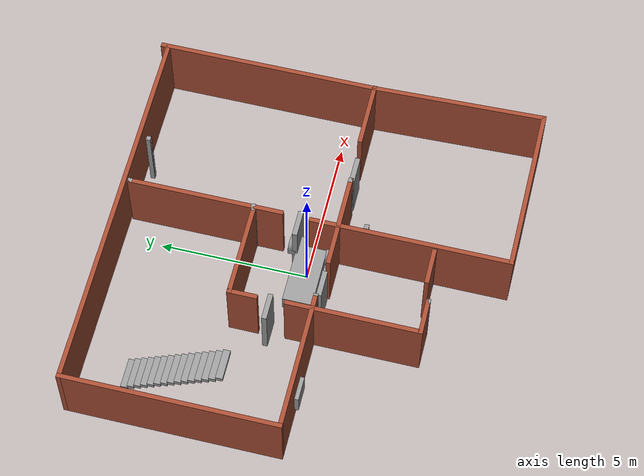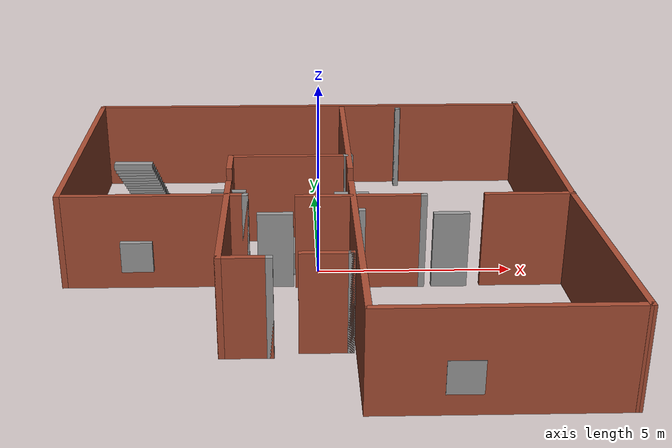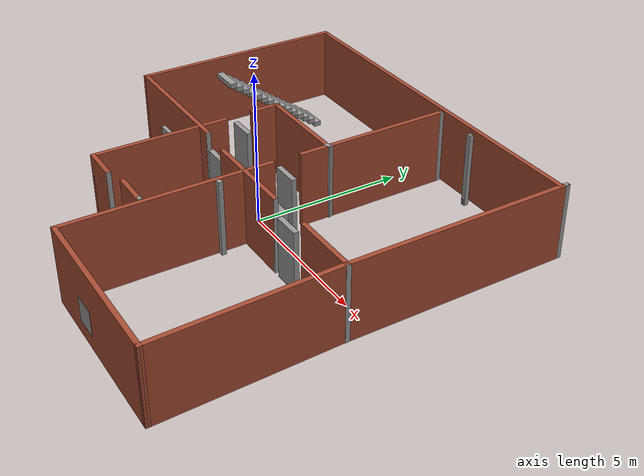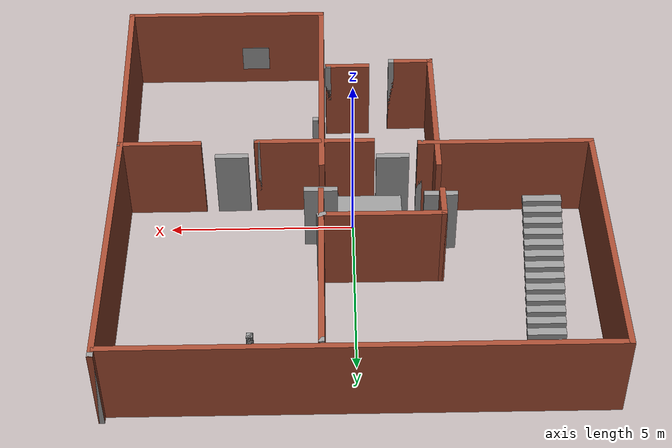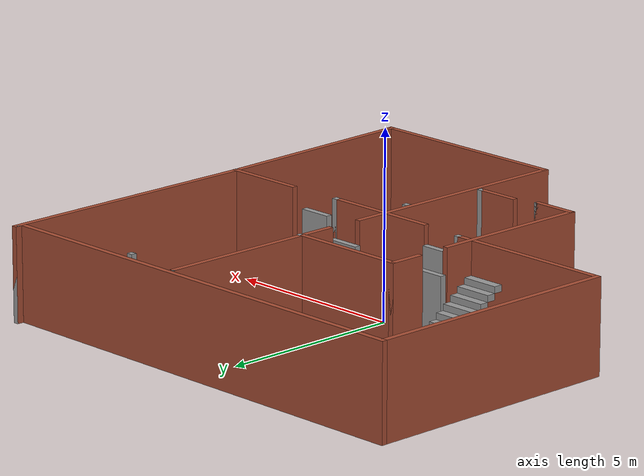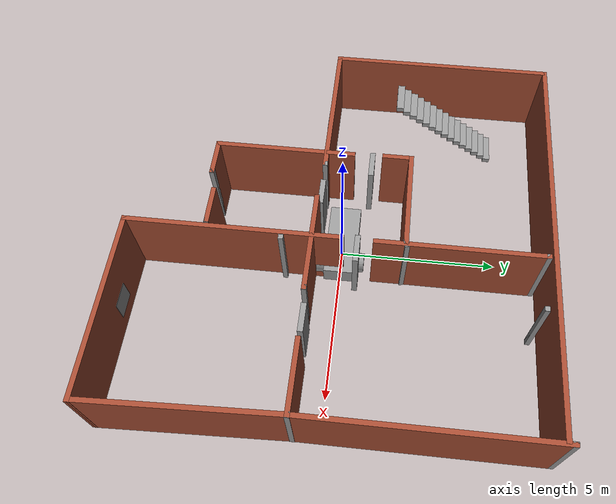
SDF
<sdf version='1.6'>
   <world name="default">
   <include>
      <pose>0 0 0.5 0 0 0</pose>
      <uri>model://my_vehicle</uri>
    </include>
    <include>
      <pose>0 0 0 0 0 0</pose>
      <uri>model://OneStore_House</uri>
    </include>
   <plugin name="hello_world" filename="libhello_world.so"/>
   </world>
</sdf>

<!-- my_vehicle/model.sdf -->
<sdf version='1.6'>
  <model name='my_vehicle'>
    <link name='link_0'>
      <inertial>
        <mass>1.41771</mass>
        <inertia>
          <ixx>0.159145</ixx>
          <ixy>0</ixy>
          <ixz>0</ixz>
          <iyy>0.725207</iyy>
          <iyz>0</iyz>
          <izz>0.802347</izz>
        </inertia>
        <pose frame=''>0 0 0 0 -0 0</pose>
      </inertial>
      <pose frame=''>-0.125946 0.005976 -0.04 0 -0 0</pose>
      <gravity>1</gravity>
      <self_collide>0</self_collide>
      <kinematic>0</kinematic>
      <enable_wind>0</enable_wind>
      <visual name='visual'>
        <pose frame=''>0 0 0 0 -0 0</pose>
        <geometry>
          <box>
            <size>2.40652 1 0.589115</size>
          </box>
        </geometry>
        <material>
          <lighting>1</lighting>
          <script>
            <uri>file://media/materials/scripts/gazebo.material</uri>
            <name>Gazebo/Grey</name>
          </script>
          <shader type='pixel'>
            <normal_map>__default__</normal_map>
          </shader>
          <ambient>0.3 0.3 0.3 1</ambient>
          <diffuse>0.7 0.7 0.7 1</diffuse>
          <specular>0.01 0.01 0.01 1</specular>
          <emissive>0 0 0 1</emissive>
        </material>
        <transparency>0</transparency>
        <cast_shadows>1</cast_shadows>
      </visual>
      <collision name='collision'>
        <laser_retro>0</laser_retro>
        <max_contacts>10</max_contacts>
        <pose frame=''>0 0 0 0 -0 0</pose>
        <geometry>
          <box>
            <size>2.40652 1 0.589115</size>
          </box>
        </geometry>
        <surface>
          <friction>
            <ode>
              <mu>1</mu>
              <mu2>1</mu2>
              <fdir1>0 0 0</fdir1>
              <slip1>0</slip1>
              <slip2>0</slip2>
            </ode>
            <torsional>
              <coefficient>1</coefficient>
              <patch_radius>0</patch_radius>
              <surface_radius>0</surface_radius>
              <use_patch_radius>1</use_patch_radius>
              <ode>
                <slip>0</slip>
              </ode>
            </torsional>
          </friction>
          <bounce>
            <restitution_coefficient>0</restitution_coefficient>
            <threshold>1e+06</threshold>
          </bounce>
          <contact>
            <collide_without_contact>0</collide_without_contact>
            <collide_without_contact_bitmask>1</collide_without_contact_bitmask>
            <collide_bitmask>1</collide_bitmask>
            <ode>
              <soft_cfm>0</soft_cfm>
              <soft_erp>0.2</soft_erp>
              <kp>1e+13</kp>
              <kd>1</kd>
              <max_vel>0.01</max_vel>
              <min_depth>0</min_depth>
            </ode>
            <bullet>
              <split_impulse>1</split_impulse>
              <split_impulse_penetration_threshold>-0.01</split_impulse_penetration_threshold>
              <soft_cfm>0</soft_cfm>
              <soft_erp>0.2</soft_erp>
              <kp>1e+13</kp>
              <kd>1</kd>
            </bullet>
          </contact>
        </surface>
      </collision>
    </link>
    <link name='link_1_clone'>
      <inertial>
        <mass>1</mass>
        <inertia>
          <ixx>0.145833</ixx>
          <ixy>0</ixy>
          <ixz>0</ixz>
          <iyy>0.145833</iyy>
          <iyz>0</iyz>
          <izz>0.125</izz>
        </inertia>
        <pose frame=''>0 0 0.3 0 -0 0</pose>
      </inertial>
      <pose frame=''>0.686499 0.631006 0.26 1.5707 0.385608 0</pose>
      <gravity>1</gravity>
      <self_collide>0</self_collide>
      <kinematic>0</kinematic>
      <enable_wind>0</enable_wind>
      <visual name='visual'>
        <pose frame=''>0 0 0 0 -0 0</pose>
        <geometry>
          <cylinder>
            <radius>0.3</radius>
            <length>0.25</length>
          </cylinder>
        </geometry>
        <material>
          <lighting>1</lighting>
          <script>
            <uri>file://media/materials/scripts/gazebo.material</uri>
            <name>Gazebo/Grey</name>
          </script>
          <shader type='pixel'>
            <normal_map>__default__</normal_map>
          </shader>
          <ambient>0.3 0.3 0.3 1</ambient>
          <diffuse>0.7 0.7 0.7 1</diffuse>
          <specular>0.01 0.01 0.01 1</specular>
          <emissive>0 0 0 1</emissive>
        </material>
        <transparency>0</transparency>
        <cast_shadows>1</cast_shadows>
      </visual>
      <collision name='collision'>
        <laser_retro>0</laser_retro>
        <max_contacts>10</max_contacts>
        <pose frame=''>0 0 0 0 -0 0</pose>
        <geometry>
          <cylinder>
            <radius>0.3</radius>
            <length>0.25</length>
          </cylinder>
        </geometry>
        <surface>
          <friction>
            <ode>
              <mu>1</mu>
              <mu2>1</mu2>
              <fdir1>0 0 0</fdir1>
              <slip1>0</slip1>
              <slip2>0</slip2>
            </ode>
            <torsional>
              <coefficient>1</coefficient>
              <patch_radius>0</patch_radius>
              <surface_radius>0</surface_radius>
              <use_patch_radius>1</use_patch_radius>
              <ode>
                <slip>0</slip>
              </ode>
            </torsional>
          </friction>
          <bounce>
            <restitution_coefficient>0</restitution_coefficient>
            <threshold>1e+06</threshold>
          </bounce>
          <contact>
            <collide_without_contact>0</collide_without_contact>
            <collide_without_contact_bitmask>1</collide_without_contact_bitmask>
            <collide_bitmask>1</collide_bitmask>
            <ode>
              <soft_cfm>0</soft_cfm>
              <soft_erp>0.2</soft_erp>
              <kp>1e+13</kp>
              <kd>1</kd>
              <max_vel>0.01</max_vel>
              <min_depth>0</min_depth>
            </ode>
            <bullet>
              <split_impulse>1</split_impulse>
              <split_impulse_penetration_threshold>-0.01</split_impulse_penetration_threshold>
              <soft_cfm>0</soft_cfm>
              <soft_erp>0.2</soft_erp>
              <kp>1e+13</kp>
              <kd>1</kd>
            </bullet>
          </contact>
        </surface>
      </collision>
    </link>
    <link name='link_1_clone_clone'>
      <inertial>
        <mass>1</mass>
        <inertia>
          <ixx>0.145833</ixx>
          <ixy>0</ixy>
          <ixz>0</ixz>
          <iyy>0.145833</iyy>
          <iyz>0</iyz>
          <izz>0.125</izz>
        </inertia>
        <pose frame=''>0 0 0.3 0 -0 0</pose>
      </inertial>
      <pose frame=''>0.686499 -0.619054 0.06 1.5707 0.385608 0</pose>
      <gravity>1</gravity>
      <self_collide>0</self_collide>
      <kinematic>0</kinematic>
      <enable_wind>0</enable_wind>
      <visual name='visual'>
        <pose frame=''>0 0 0 0 -0 0</pose>
        <geometry>
          <cylinder>
            <radius>0.3</radius>
            <length>0.25</length>
          </cylinder>
        </geometry>
        <material>
          <lighting>1</lighting>
          <script>
            <uri>file://media/materials/scripts/gazebo.material</uri>
            <name>Gazebo/Grey</name>
          </script>
          <shader type='pixel'>
            <normal_map>__default__</normal_map>
          </shader>
          <ambient>0.3 0.3 0.3 1</ambient>
          <diffuse>0.7 0.7 0.7 1</diffuse>
          <specular>0.01 0.01 0.01 1</specular>
          <emissive>0 0 0 1</emissive>
        </material>
        <transparency>0</transparency>
        <cast_shadows>1</cast_shadows>
      </visual>
      <collision name='collision'>
        <laser_retro>0</laser_retro>
        <max_contacts>10</max_contacts>
        <pose frame=''>0 0 0 0 -0 0</pose>
        <geometry>
          <cylinder>
            <radius>0.3</radius>
            <length>0.25</length>
          </cylinder>
        </geometry>
        <surface>
          <friction>
            <ode>
              <mu>1</mu>
              <mu2>1</mu2>
              <fdir1>0 0 0</fdir1>
              <slip1>0</slip1>
              <slip2>0</slip2>
            </ode>
            <torsional>
              <coefficient>1</coefficient>
              <patch_radius>0</patch_radius>
              <surface_radius>0</surface_radius>
              <use_patch_radius>1</use_patch_radius>
              <ode>
                <slip>0</slip>
              </ode>
            </torsional>
          </friction>
          <bounce>
            <restitution_coefficient>0</restitution_coefficient>
            <threshold>1e+06</threshold>
          </bounce>
          <contact>
            <collide_without_contact>0</collide_without_contact>
            <collide_without_contact_bitmask>1</collide_without_contact_bitmask>
            <collide_bitmask>1</collide_bitmask>
            <ode>
              <soft_cfm>0</soft_cfm>
              <soft_erp>0.2</soft_erp>
              <kp>1e+13</kp>
              <kd>1</kd>
              <max_vel>0.01</max_vel>
              <min_depth>0</min_depth>
            </ode>
            <bullet>
              <split_impulse>1</split_impulse>
              <split_impulse_penetration_threshold>-0.01</split_impulse_penetration_threshold>
              <soft_cfm>0</soft_cfm>
              <soft_erp>0.2</soft_erp>
              <kp>1e+13</kp>
              <kd>1</kd>
            </bullet>
          </contact>
        </surface>
      </collision>
    </link>
    <link name='link_2'>
      <inertial>
        <mass>1</mass>
        <inertia>
          <ixx>0.1</ixx>
          <ixy>0</ixy>
          <ixz>0</ixz>
          <iyy>0.1</iyy>
          <iyz>0</iyz>
          <izz>0.1</izz>
        </inertia>
        <pose frame=''>0 0 0 0 -0 0</pose>
      </inertial>
      <pose frame=''>-1.12921 0.005976 -0.04 1.5707 -0 0</pose>
      <gravity>1</gravity>
      <self_collide>0</self_collide>
      <kinematic>0</kinematic>
      <enable_wind>0</enable_wind>
      <visual name='visual'>
        <pose frame=''>0 0 0 0 -0 0</pose>
        <geometry>
          <sphere>
            <radius>0.2</radius>
          </sphere>
        </geometry>
        <material>
          <lighting>1</lighting>
          <script>
            <uri>file://media/materials/scripts/gazebo.material</uri>
            <name>Gazebo/Grey</name>
          </script>
          <shader type='pixel'>
            <normal_map>__default__</normal_map>
          </shader>
          <ambient>0.3 0.3 0.3 1</ambient>
          <diffuse>0.7 0.7 0.7 1</diffuse>
          <specular>0.01 0.01 0.01 1</specular>
          <emissive>0 0 0 1</emissive>
        </material>
        <transparency>0</transparency>
        <cast_shadows>1</cast_shadows>
      </visual>
      <collision name='collision'>
        <laser_retro>0</laser_retro>
        <max_contacts>10</max_contacts>
        <pose frame=''>0 0 0 0 -0 0</pose>
        <geometry>
          <sphere>
            <radius>0.2</radius>
          </sphere>
        </geometry>
        <surface>
          <friction>
            <ode>
              <mu>1</mu>
              <mu2>1</mu2>
              <fdir1>0 0 0</fdir1>
              <slip1>0</slip1>
              <slip2>0</slip2>
            </ode>
            <torsional>
              <coefficient>1</coefficient>
              <patch_radius>0</patch_radius>
              <surface_radius>0</surface_radius>
              <use_patch_radius>1</use_patch_radius>
              <ode>
                <slip>0</slip>
              </ode>
            </torsional>
          </friction>
          <bounce>
            <restitution_coefficient>0</restitution_coefficient>
            <threshold>1e+06</threshold>
          </bounce>
          <contact>
            <collide_without_contact>0</collide_without_contact>
            <collide_without_contact_bitmask>1</collide_without_contact_bitmask>
            <collide_bitmask>1</collide_bitmask>
            <ode>
              <soft_cfm>0</soft_cfm>
              <soft_erp>0.2</soft_erp>
              <kp>1e+13</kp>
              <kd>1</kd>
              <max_vel>0.01</max_vel>
              <min_depth>0</min_depth>
            </ode>
            <bullet>
              <split_impulse>1</split_impulse>
              <split_impulse_penetration_threshold>-0.01</split_impulse_penetration_threshold>
              <soft_cfm>0</soft_cfm>
              <soft_erp>0.2</soft_erp>
              <kp>1e+13</kp>
              <kd>1</kd>
            </bullet>
          </contact>
        </surface>
      </collision>
    </link>
    <model name='depth_camera'>
      <link name='link'>
        <pose frame=''>0 0 0.05 0 -0 0</pose>
        <inertial>
          <mass>0.1</mass>
          <inertia>
            <ixx>0.000166667</ixx>
            <iyy>0.000166667</iyy>
            <izz>0.000166667</izz>
            <ixy>0</ixy>
            <ixz>0</ixz>
            <iyz>0</iyz>
          </inertia>
        </inertial>
        <collision name='collision'>
          <geometry>
            <box>
              <size>0.1 0.1 0.1</size>
            </box>
          </geometry>
        </collision>
        <visual name='visual'>
          <geometry>
            <box>
              <size>0.1 0.1 0.1</size>
            </box>
          </geometry>
        </visual>
        <sensor name='camera' type='depth'>
          <camera name='__default__'>
            <horizontal_fov>1.047</horizontal_fov>
            <image>
              <width>320</width>
              <height>240</height>
            </image>
            <clip>
              <near>0.1</near>
              <far>100</far>
            </clip>
          </camera>
          <always_on>1</always_on>
          <update_rate>30</update_rate>
          <visualize>1</visualize>
        </sensor>
      </link>
      <pose frame=''>-0.117843 -0.023908 -0.24 0 -0 0</pose>
    </model>
    <joint name='link_0_JOINT_0' type='revolute'>
      <parent>link_0</parent>
      <child>link_1_clone</child>
      <pose frame=''>0 0 0 0 -0 0</pose>
      <axis>
        <xyz>0 0 1</xyz>
        <use_parent_model_frame>0</use_parent_model_frame>
        <limit>
          <lower>-1.79769e+308</lower>
          <upper>1.79769e+308</upper>
          <effort>-1</effort>
          <velocity>-1</velocity>
        </limit>
        <dynamics>
          <spring_reference>0</spring_reference>
          <spring_stiffness>0</spring_stiffness>
          <damping>0</damping>
        </dynamics>
      </axis>
      <physics>
        <ode>
          <limit>
            <cfm>0</cfm>
            <erp>0.2</erp>
          </limit>
          <suspension>
            <cfm>0</cfm>
            <erp>0.2</erp>
          </suspension>
        </ode>
      </physics>
    </joint>
    <joint name='link_0_JOINT_3' type='revolute'>
      <parent>link_0</parent>
      <child>link_1_clone_clone</child>
      <pose frame=''>0 0 0 0 -0.04 0</pose>
      <axis>
        <xyz>0 0 1</xyz>
        <use_parent_model_frame>0</use_parent_model_frame>
        <limit>
          <lower>-1.79769e+308</lower>
          <upper>1.79769e+308</upper>
          <effort>-1</effort>
          <velocity>-1</velocity>
        </limit>
        <dynamics>
          <spring_reference>0</spring_reference>
          <spring_stiffness>0</spring_stiffness>
          <damping>0</damping>
        </dynamics>
      </axis>
      <physics>
        <ode>
          <limit>
            <cfm>0</cfm>
            <erp>0.2</erp>
          </limit>
          <suspension>
            <cfm>0</cfm>
            <erp>0.2</erp>
          </suspension>
        </ode>
      </physics>
    </joint>
    <joint name='link_0_JOINT_8' type='fixed'>
      <parent>link_0</parent>
      <child>depth_camera::link</child>
      <pose frame=''>0 0 0 0 -0 0</pose>
      <physics>
        <ode>
          <limit>
            <cfm>0</cfm>
            <erp>0.2</erp>
          </limit>
          <suspension>
            <cfm>0</cfm>
            <erp>0.2</erp>
          </suspension>
        </ode>
      </physics>
    </joint>
    <static>0</static>
    <allow_auto_disable>1</allow_auto_disable>
    <plugin name='follower' filename='libFollowerPlugin.so'/>
  </model>
</sdf>

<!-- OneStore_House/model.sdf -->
<sdf version='1.6'>
  <model name='OneStore_House'>
    <pose frame=''>-0.836558 -0.330219 0 0 -0 0</pose>
    <link name='Door_0'>
      <collision name='Door_0_Collision'>
        <geometry>
          <box>
            <size>0.9 0.17 2</size>
          </box>
        </geometry>
        <pose frame=''>0 0 1 0 -0 0</pose>
      </collision>
      <visual name='Door_0_Visual'>
        <pose frame=''>0 0 1 0 -0 0</pose>
        <geometry>
          <box>
            <size>0.9 0.17 2</size>
          </box>
        </geometry>
        <material>
          <script>
            <uri>file://media/materials/scripts/gazebo.material</uri>
            <name>Gazebo/Grey</name>
          </script>
        </material>
      </visual>
      <pose frame=''>-2.3166 0.73376 0 0 -0 0</pose>
    </link>
    <link name='Door_1'>
      <collision name='Door_1_Collision'>
        <geometry>
          <box>
            <size>0.9 0.17 2</size>
          </box>
        </geometry>
        <pose frame=''>0 0 1 0 -0 0</pose>
      </collision>
      <visual name='Door_1_Visual'>
        <pose frame=''>0 0 1 0 -0 0</pose>
        <geometry>
          <box>
            <size>0.9 0.17 2</size>
          </box>
        </geometry>
        <material>
          <script>
            <uri>file://media/materials/scripts/gazebo.material</uri>
            <name>Gazebo/Grey</name>
          </script>
        </material>
      </visual>
      <pose frame=''>0.864788 0.519629 0 0 -0 0</pose>
    </link>
    <link name='Door_2'>
      <collision name='Door_2_Collision'>
        <geometry>
          <box>
            <size>0.9 0.17 2</size>
          </box>
        </geometry>
        <pose frame=''>0 0 1 0 -0 0</pose>
      </collision>
      <visual name='Door_2_Visual'>
        <pose frame=''>0 0 1 0 -0 0</pose>
        <geometry>
          <box>
            <size>0.9 0.17 2</size>
          </box>
        </geometry>
        <material>
          <script>
            <uri>file://media/materials/scripts/gazebo.material</uri>
            <name>Gazebo/Grey</name>
          </script>
        </material>
      </visual>
      <pose frame=''>-1.09299 -0.765161 0 0 -0 0</pose>
    </link>
    <link name='Door_3'>
      <collision name='Door_3_Collision'>
        <geometry>
          <box>
            <size>0.9 0.17 2</size>
          </box>
        </geometry>
        <pose frame=''>0 0 1 0 -0 0</pose>
      </collision>
      <visual name='Door_3_Visual'>
        <pose frame=''>0 0 1 0 -0 0</pose>
        <geometry>
          <box>
            <size>0.9 0.17 2</size>
          </box>
        </geometry>
        <material>
          <script>
            <uri>file://media/materials/scripts/gazebo.material</uri>
            <name>Gazebo/Grey</name>
          </script>
        </material>
      </visual>
      <pose frame=''>3.28142 -0.826342 0 0 -0 0</pose>
    </link>
    <link name='Stairs_0'>
      <visual name='Stairs_0_Visual_0'>
        <pose frame=''>-4.84735 4.77007 0.083333 0 -0 0</pose>
        <geometry>
          <box>
            <size>1 0.233333 0.166667</size>
          </box>
        </geometry>
        <material>
          <script>
            <uri>file://media/materials/scripts/gazebo.material</uri>
            <name>Gazebo/Grey</name>
          </script>
          <ambient>1 1 1 1</ambient>
        </material>
        <meta>
          <layer>0</layer>
        </meta>
      </visual>
      <collision name='Stairs_0_Collision_0'>
        <geometry>
          <box>
            <size>1 0.233333 0.166667</size>
          </box>
        </geometry>
        <pose frame=''>-4.84735 4.77007 0.083333 0 -0 0</pose>
      </collision>
      <visual name='Stairs_0_Visual_1'>
        <pose frame=''>-4.84735 4.53674 0.25 0 -0 0</pose>
        <geometry>
          <box>
            <size>1 0.233333 0.166667</size>
          </box>
        </geometry>
        <material>
          <script>
            <uri>file://media/materials/scripts/gazebo.material</uri>
            <name>Gazebo/Grey</name>
          </script>
          <ambient>1 1 1 1</ambient>
        </material>
        <meta>
          <layer>0</layer>
        </meta>
      </visual>
      <collision name='Stairs_0_Collision_1'>
        <geometry>
          <box>
            <size>1 0.233333 0.166667</size>
          </box>
        </geometry>
        <pose frame=''>-4.84735 4.53674 0.25 0 -0 0</pose>
      </collision>
      <visual name='Stairs_0_Visual_2'>
        <pose frame=''>-4.84735 4.3034 0.416667 0 -0 0</pose>
        <geometry>
          <box>
            <size>1 0.233333 0.166667</size>
          </box>
        </geometry>
        <material>
          <script>
            <uri>file://media/materials/scripts/gazebo.material</uri>
            <name>Gazebo/Grey</name>
          </script>
          <ambient>1 1 1 1</ambient>
        </material>
        <meta>
          <layer>0</layer>
        </meta>
      </visual>
      <collision name='Stairs_0_Collision_2'>
        <geometry>
          <box>
            <size>1 0.233333 0.166667</size>
          </box>
        </geometry>
        <pose frame=''>-4.84735 4.3034 0.416667 0 -0 0</pose>
      </collision>
      <visual name='Stairs_0_Visual_3'>
        <pose frame=''>-4.84735 4.07007 0.583333 0 -0 0</pose>
        <geometry>
          <box>
            <size>1 0.233333 0.166667</size>
          </box>
        </geometry>
        <material>
          <script>
            <uri>file://media/materials/scripts/gazebo.material</uri>
            <name>Gazebo/Grey</name>
          </script>
          <ambient>1 1 1 1</ambient>
        </material>
        <meta>
          <layer>0</layer>
        </meta>
      </visual>
      <collision name='Stairs_0_Collision_3'>
        <geometry>
          <box>
            <size>1 0.233333 0.166667</size>
          </box>
        </geometry>
        <pose frame=''>-4.84735 4.07007 0.583333 0 -0 0</pose>
      </collision>
      <visual name='Stairs_0_Visual_4'>
        <pose frame=''>-4.84735 3.83674 0.75 0 -0 0</pose>
        <geometry>
          <box>
            <size>1 0.233333 0.166667</size>
          </box>
        </geometry>
        <material>
          <script>
            <uri>file://media/materials/scripts/gazebo.material</uri>
            <name>Gazebo/Grey</name>
          </script>
          <ambient>1 1 1 1</ambient>
        </material>
        <meta>
          <layer>0</layer>
        </meta>
      </visual>
      <collision name='Stairs_0_Collision_4'>
        <geometry>
          <box>
            <size>1 0.233333 0.166667</size>
          </box>
        </geometry>
        <pose frame=''>-4.84735 3.83674 0.75 0 -0 0</pose>
      </collision>
      <visual name='Stairs_0_Visual_5'>
        <pose frame=''>-4.84735 3.6034 0.916667 0 -0 0</pose>
        <geometry>
          <box>
            <size>1 0.233333 0.166667</size>
          </box>
        </geometry>
        <material>
          <script>
            <uri>file://media/materials/scripts/gazebo.material</uri>
            <name>Gazebo/Grey</name>
          </script>
          <ambient>1 1 1 1</ambient>
        </material>
        <meta>
          <layer>0</layer>
        </meta>
      </visual>
      <collision name='Stairs_0_Collision_5'>
        <geometry>
          <box>
            <size>1 0.233333 0.166667</size>
          </box>
        </geometry>
        <pose frame=''>-4.84735 3.6034 0.916667 0 -0 0</pose>
      </collision>
      <visual name='Stairs_0_Visual_6'>
        <pose frame=''>-4.84735 3.37007 1.08333 0 -0 0</pose>
        <geometry>
          <box>
            <size>1 0.233333 0.166667</size>
          </box>
        </geometry>
        <material>
          <script>
            <uri>file://media/materials/scripts/gazebo.material</uri>
            <name>Gazebo/Grey</name>
          </script>
          <ambient>1 1 1 1</ambient>
        </material>
        <meta>
          <layer>0</layer>
        </meta>
      </visual>
      <collision name='Stairs_0_Collision_6'>
        <geometry>
          <box>
            <size>1 0.233333 0.166667</size>
          </box>
        </geometry>
        <pose frame=''>-4.84735 3.37007 1.08333 0 -0 0</pose>
      </collision>
      <visual name='Stairs_0_Visual_7'>
        <pose frame=''>-4.84735 3.13674 1.25 0 -0 0</pose>
        <geometry>
          <box>
            <size>1 0.233333 0.166667</size>
          </box>
        </geometry>
        <material>
          <script>
            <uri>file://media/materials/scripts/gazebo.material</uri>
            <name>Gazebo/Grey</name>
          </script>
          <ambient>1 1 1 1</ambient>
        </material>
        <meta>
          <layer>0</layer>
        </meta>
      </visual>
      <collision name='Stairs_0_Collision_7'>
        <geometry>
          <box>
            <size>1 0.233333 0.166667</size>
          </box>
        </geometry>
        <pose frame=''>-4.84735 3.13674 1.25 0 -0 0</pose>
      </collision>
      <visual name='Stairs_0_Visual_8'>
        <pose frame=''>-4.84735 2.9034 1.41667 0 -0 0</pose>
        <geometry>
          <box>
            <size>1 0.233333 0.166667</size>
          </box>
        </geometry>
        <material>
          <script>
            <uri>file://media/materials/scripts/gazebo.material</uri>
            <name>Gazebo/Grey</name>
          </script>
          <ambient>1 1 1 1</ambient>
        </material>
        <meta>
          <layer>0</layer>
        </meta>
      </visual>
      <collision name='Stairs_0_Collision_8'>
        <geometry>
          <box>
            <size>1 0.233333 0.166667</size>
          </box>
        </geometry>
        <pose frame=''>-4.84735 2.9034 1.41667 0 -0 0</pose>
      </collision>
      <visual name='Stairs_0_Visual_9'>
        <pose frame=''>-4.84735 2.67007 1.58333 0 -0 0</pose>
        <geometry>
          <box>
            <size>1 0.233333 0.166667</size>
          </box>
        </geometry>
        <material>
          <script>
            <uri>file://media/materials/scripts/gazebo.material</uri>
            <name>Gazebo/Grey</name>
          </script>
          <ambient>1 1 1 1</ambient>
        </material>
        <meta>
          <layer>0</layer>
        </meta>
      </visual>
      <collision name='Stairs_0_Collision_9'>
        <geometry>
          <box>
            <size>1 0.233333 0.166667</size>
          </box>
        </geometry>
        <pose frame=''>-4.84735 2.67007 1.58333 0 -0 0</pose>
      </collision>
      <visual name='Stairs_0_Visual_10'>
        <pose frame=''>-4.84735 2.43674 1.75 0 -0 0</pose>
        <geometry>
          <box>
            <size>1 0.233333 0.166667</size>
          </box>
        </geometry>
        <material>
          <script>
            <uri>file://media/materials/scripts/gazebo.material</uri>
            <name>Gazebo/Grey</name>
          </script>
          <ambient>1 1 1 1</ambient>
        </material>
        <meta>
          <layer>0</layer>
        </meta>
      </visual>
      <collision name='Stairs_0_Collision_10'>
        <geometry>
          <box>
            <size>1 0.233333 0.166667</size>
          </box>
        </geometry>
        <pose frame=''>-4.84735 2.43674 1.75 0 -0 0</pose>
      </collision>
      <visual name='Stairs_0_Visual_11'>
        <pose frame=''>-4.84735 2.2034 1.91667 0 -0 0</pose>
        <geometry>
          <box>
            <size>1 0.233333 0.166667</size>
          </box>
        </geometry>
        <material>
          <script>
            <uri>file://media/materials/scripts/gazebo.material</uri>
            <name>Gazebo/Grey</name>
          </script>
          <ambient>1 1 1 1</ambient>
        </material>
        <meta>
          <layer>0</layer>
        </meta>
      </visual>
      <collision name='Stairs_0_Collision_11'>
        <geometry>
          <box>
            <size>1 0.233333 0.166667</size>
          </box>
        </geometry>
        <pose frame=''>-4.84735 2.2034 1.91667 0 -0 0</pose>
      </collision>
      <visual name='Stairs_0_Visual_12'>
        <pose frame=''>-4.84735 1.97007 2.08333 0 -0 0</pose>
        <geometry>
          <box>
            <size>1 0.233333 0.166667</size>
          </box>
        </geometry>
        <material>
          <script>
            <uri>file://media/materials/scripts/gazebo.material</uri>
            <name>Gazebo/Grey</name>
          </script>
          <ambient>1 1 1 1</ambient>
        </material>
        <meta>
          <layer>0</layer>
        </meta>
      </visual>
      <collision name='Stairs_0_Collision_12'>
        <geometry>
          <box>
            <size>1 0.233333 0.166667</size>
          </box>
        </geometry>
        <pose frame=''>-4.84735 1.97007 2.08333 0 -0 0</pose>
      </collision>
      <visual name='Stairs_0_Visual_13'>
        <pose frame=''>-4.84735 1.73674 2.25 0 -0 0</pose>
        <geometry>
          <box>
            <size>1 0.233333 0.166667</size>
          </box>
        </geometry>
        <material>
          <script>
            <uri>file://media/materials/scripts/gazebo.material</uri>
            <name>Gazebo/Grey</name>
          </script>
          <ambient>1 1 1 1</ambient>
        </material>
        <meta>
          <layer>0</layer>
        </meta>
      </visual>
      <collision name='Stairs_0_Collision_13'>
        <geometry>
          <box>
            <size>1 0.233333 0.166667</size>
          </box>
        </geometry>
        <pose frame=''>-4.84735 1.73674 2.25 0 -0 0</pose>
      </collision>
      <visual name='Stairs_0_Visual_14'>
        <pose frame=''>-4.84735 1.5034 2.41667 0 -0 0</pose>
        <geometry>
          <box>
            <size>1 0.233333 0.166667</size>
          </box>
        </geometry>
        <material>
          <script>
            <uri>file://media/materials/scripts/gazebo.material</uri>
            <name>Gazebo/Grey</name>
          </script>
          <ambient>1 1 1 1</ambient>
        </material>
        <meta>
          <layer>0</layer>
        </meta>
      </visual>
      <collision name='Stairs_0_Collision_14'>
        <geometry>
          <box>
            <size>1 0.233333 0.166667</size>
          </box>
        </geometry>
        <pose frame=''>-4.84735 1.5034 2.41667 0 -0 0</pose>
      </collision>
    </link>
    <link name='Wall_11'>
      <collision name='Wall_11_Collision'>
        <geometry>
          <box>
            <size>12.75 0.15 2.5</size>
          </box>
        </geometry>
        <pose frame=''>0 0 1.25 0 -0 0</pose>
      </collision>
      <visual name='Wall_11_Visual'>
        <pose frame=''>0 0 1.25 0 -0 0</pose>
        <geometry>
          <box>
            <size>12.75 0.15 2.5</size>
          </box>
        </geometry>
        <material>
          <script>
            <uri>file://media/materials/scripts/gazebo.material</uri>
            <name>Gazebo/Bricks</name>
          </script>
          <ambient>1 1 1 1</ambient>
        </material>
        <meta>
          <layer>0</layer>
        </meta>
      </visual>
      <pose frame=''>-0.130955 6.36951 0 0 -0 3.14159</pose>
    </link>
    <link name='Wall_12'>
      <collision name='Wall_12_Collision'>
        <geometry>
          <box>
            <size>7.25 0.15 2.5</size>
          </box>
        </geometry>
        <pose frame=''>0 0 1.25 0 -0 0</pose>
      </collision>
      <visual name='Wall_12_Visual'>
        <pose frame=''>0 0 1.25 0 -0 0</pose>
        <geometry>
          <box>
            <size>7.25 0.15 2.5</size>
          </box>
        </geometry>
        <material>
          <script>
            <uri>file://media/materials/scripts/gazebo.material</uri>
            <name>Gazebo/Bricks</name>
          </script>
          <ambient>1 1 1 1</ambient>
        </material>
        <meta>
          <layer>0</layer>
        </meta>
      </visual>
      <pose frame=''>-6.43095 2.81951 0 0 -0 -1.5708</pose>
    </link>
    <link name='Wall_13'>
      <collision name='Wall_13_Collision'>
        <geometry>
          <box>
            <size>4.75 0.15 2.5</size>
          </box>
        </geometry>
        <pose frame=''>0 0 1.25 0 -0 0</pose>
      </collision>
      <visual name='Wall_13_Visual'>
        <pose frame=''>0 0 1.25 0 -0 0</pose>
        <geometry>
          <box>
            <size>4.75 0.15 2.5</size>
          </box>
        </geometry>
        <material>
          <script>
            <uri>file://media/materials/scripts/gazebo.material</uri>
            <name>Gazebo/Bricks</name>
          </script>
          <ambient>1 1 1 1</ambient>
        </material>
        <meta>
          <layer>0</layer>
        </meta>
      </visual>
      <pose frame=''>-4.13095 -0.730486 0 0 -0 0</pose>
    </link>
    <link name='Wall_14'>
      <collision name='Wall_14_Collision'>
        <geometry>
          <box>
            <size>0.16 0.15 2.5</size>
          </box>
        </geometry>
        <pose frame=''>0 0 1.25 0 -0 0</pose>
      </collision>
      <visual name='Wall_14_Visual'>
        <pose frame=''>0 0 1.25 0 -0 0</pose>
        <geometry>
          <box>
            <size>0.16 0.15 2.5</size>
          </box>
        </geometry>
        <material>
          <script>
            <uri>file://media/materials/scripts/gazebo.material</uri>
            <name>Gazebo/Grey</name>
          </script>
          <ambient>1 1 1 1</ambient>
        </material>
        <meta>
          <layer>0</layer>
        </meta>
      </visual>
      <pose frame=''>-1.82595 -0.730486 0 0 -0 0</pose>
    </link>
    <link name='Wall_16'>
      <collision name='Wall_16_Collision'>
        <geometry>
          <box>
            <size>3.25 0.15 2.5</size>
          </box>
        </geometry>
        <pose frame=''>0 0 1.25 0 -0 0</pose>
      </collision>
      <visual name='Wall_16_Visual'>
        <pose frame=''>0 0 1.25 0 -0 0</pose>
        <geometry>
          <box>
            <size>3.25 0.15 2.5</size>
          </box>
        </geometry>
        <material>
          <script>
            <uri>file://media/materials/scripts/gazebo.material</uri>
            <name>Gazebo/Bricks</name>
          </script>
          <ambient>1 1 1 1</ambient>
        </material>
        <meta>
          <layer>0</layer>
        </meta>
      </visual>
      <pose frame=''>1.02157 -0.841259 0 0 -0 0</pose>
    </link>
    <link name='Wall_17'>
      <collision name='Wall_17_Collision'>
        <geometry>
          <box>
            <size>0.16 0.15 2.5</size>
          </box>
        </geometry>
        <pose frame=''>0 0 1.25 0 -0 0</pose>
      </collision>
      <visual name='Wall_17_Visual'>
        <pose frame=''>0 0 1.25 0 -0 0</pose>
        <geometry>
          <box>
            <size>0.16 0.15 2.5</size>
          </box>
        </geometry>
        <material>
          <script>
            <uri>file://media/materials/scripts/gazebo.material</uri>
            <name>Gazebo/Grey</name>
          </script>
          <ambient>1 1 1 1</ambient>
        </material>
        <meta>
          <layer>0</layer>
        </meta>
      </visual>
      <pose frame=''>2.57657 -0.841259 0 0 -0 0</pose>
    </link>
    <link name='Wall_19'>
      <collision name='Wall_19_Collision'>
        <geometry>
          <box>
            <size>5.25 0.15 2.5</size>
          </box>
        </geometry>
        <pose frame=''>0 0 1.25 0 -0 0</pose>
      </collision>
      <visual name='Wall_19_Visual'>
        <pose frame=''>0 0 1.25 0 -0 0</pose>
        <geometry>
          <box>
            <size>5.25 0.15 2.5</size>
          </box>
        </geometry>
        <material>
          <script>
            <uri>file://media/materials/scripts/gazebo.material</uri>
            <name>Gazebo/Bricks</name>
          </script>
          <ambient>1 1 1 1</ambient>
        </material>
        <meta>
          <layer>0</layer>
        </meta>
      </visual>
      <pose frame=''>0.854779 3.62396 0 0 -0 1.5708</pose>
    </link>
    <link name='Wall_20'>
      <collision name='Wall_20_Collision'>
        <geometry>
          <box>
            <size>0.15 0.15 2.5</size>
          </box>
        </geometry>
        <pose frame=''>0 0 1.25 0 -0 0</pose>
      </collision>
      <visual name='Wall_20_Visual'>
        <pose frame=''>0 0 1.25 0 -0 0</pose>
        <geometry>
          <box>
            <size>0.15 0.15 2.5</size>
          </box>
        </geometry>
        <material>
          <script>
            <uri>file://media/materials/scripts/gazebo.material</uri>
            <name>Gazebo/Grey</name>
          </script>
          <ambient>1 1 1 1</ambient>
        </material>
        <meta>
          <layer>0</layer>
        </meta>
      </visual>
      <pose frame=''>0.854779 6.17396 0 0 -0 0</pose>
    </link>
    <link name='Wall_22'>
      <collision name='Wall_22_Collision'>
        <geometry>
          <box>
            <size>1 0.15 2.5</size>
          </box>
        </geometry>
        <pose frame=''>0 0 1.25 0 -0 0</pose>
      </collision>
      <visual name='Wall_22_Visual'>
        <pose frame=''>0 0 1.25 0 -0 0</pose>
        <geometry>
          <box>
            <size>1 0.15 2.5</size>
          </box>
        </geometry>
        <material>
          <script>
            <uri>file://media/materials/scripts/gazebo.material</uri>
            <name>Gazebo/Bricks</name>
          </script>
          <ambient>1 1 1 1</ambient>
        </material>
        <meta>
          <layer>0</layer>
        </meta>
      </visual>
      <pose frame=''>-2.31065 1.55215 0 0 -0 1.5708</pose>
    </link>
    <link name='Wall_23'>
      <collision name='Wall_23_Collision'>
        <geometry>
          <box>
            <size>3.25 0.15 2.5</size>
          </box>
        </geometry>
        <pose frame=''>0 0 1.25 0 -0 0</pose>
      </collision>
      <visual name='Wall_23_Visual'>
        <pose frame=''>0 0 1.25 0 -0 0</pose>
        <geometry>
          <box>
            <size>3.25 0.15 2.5</size>
          </box>
        </geometry>
        <material>
          <script>
            <uri>file://media/materials/scripts/gazebo.material</uri>
            <name>Gazebo/Bricks</name>
          </script>
          <ambient>1 1 1 1</ambient>
        </material>
        <meta>
          <layer>0</layer>
        </meta>
      </visual>
      <pose frame=''>-0.760645 1.97715 0 0 -0 0</pose>
    </link>
    <link name='Wall_24'>
      <collision name='Wall_24_Collision'>
        <geometry>
          <box>
            <size>0.25 0.15 2.5</size>
          </box>
        </geometry>
        <pose frame=''>0 0 1.25 0 -0 0</pose>
      </collision>
      <visual name='Wall_24_Visual'>
        <pose frame=''>0 0 1.25 0 -0 0</pose>
        <geometry>
          <box>
            <size>0.25 0.15 2.5</size>
          </box>
        </geometry>
        <material>
          <script>
            <uri>file://media/materials/scripts/gazebo.material</uri>
            <name>Gazebo/Grey</name>
          </script>
          <ambient>1 1 1 1</ambient>
        </material>
        <meta>
          <layer>0</layer>
        </meta>
      </visual>
      <pose frame=''>0.837651 1.9901 0 0 -0 0.261799</pose>
    </link>
    <link name='Wall_26'>
      <collision name='Wall_26_Collision'>
        <geometry>
          <box>
            <size>2.25 0.15 2.5</size>
          </box>
        </geometry>
        <pose frame=''>0 0 1.25 0 -0 0</pose>
      </collision>
      <visual name='Wall_26_Visual'>
        <pose frame=''>0 0 1.25 0 -0 0</pose>
        <geometry>
          <box>
            <size>2.25 0.15 2.5</size>
          </box>
        </geometry>
        <material>
          <script>
            <uri>file://media/materials/scripts/gazebo.material</uri>
            <name>Gazebo/Bricks</name>
          </script>
          <ambient>1 1 1 1</ambient>
        </material>
        <meta>
          <layer>0</layer>
        </meta>
      </visual>
      <pose frame=''>5.19082 -0.800542 0 0 -0 0</pose>
    </link>
    <link name='Wall_27'>
      <collision name='Wall_27_Collision'>
        <geometry>
          <box>
            <size>7.5 0.15 2.5</size>
          </box>
        </geometry>
        <pose frame=''>0 0 1.25 0 -0 0</pose>
      </collision>
      <visual name='Wall_27_Visual'>
        <pose frame=''>0 0 1.25 0 -0 0</pose>
        <geometry>
          <box>
            <size>7.5 0.15 2.5</size>
          </box>
        </geometry>
        <material>
          <script>
            <uri>file://media/materials/scripts/gazebo.material</uri>
            <name>Gazebo/Bricks</name>
          </script>
          <ambient>1 1 1 1</ambient>
        </material>
        <meta>
          <layer>0</layer>
        </meta>
      </visual>
      <pose frame=''>6.24082 2.87446 0 0 -0 1.5708</pose>
    </link>
    <link name='Wall_28'>
      <collision name='Wall_28_Collision'>
        <geometry>
          <box>
            <size>0.15 0.15 2.5</size>
          </box>
        </geometry>
        <pose frame=''>0 0 1.25 0 -0 0</pose>
      </collision>
      <visual name='Wall_28_Visual'>
        <pose frame=''>0 0 1.25 0 -0 0</pose>
        <geometry>
          <box>
            <size>0.15 0.15 2.5</size>
          </box>
        </geometry>
        <material>
          <script>
            <uri>file://media/materials/scripts/gazebo.material</uri>
            <name>Gazebo/Grey</name>
          </script>
          <ambient>1 1 1 1</ambient>
        </material>
        <meta>
          <layer>0</layer>
        </meta>
      </visual>
      <pose frame=''>6.24082 6.54946 0 0 -0 0</pose>
    </link>
    <link name='Wall_3'>
      <collision name='Wall_3_Collision'>
        <geometry>
          <box>
            <size>0.15 0.15 2.5</size>
          </box>
        </geometry>
        <pose frame=''>0 0 1.25 0 -0 0</pose>
      </collision>
      <visual name='Wall_3_Visual'>
        <pose frame=''>0 0 1.25 0 -0 0</pose>
        <geometry>
          <box>
            <size>0.15 0.15 2.5</size>
          </box>
        </geometry>
        <material>
          <script>
            <uri>file://media/materials/scripts/gazebo.material</uri>
            <name>Gazebo/Grey</name>
          </script>
          <ambient>1 1 1 1</ambient>
        </material>
        <meta>
          <layer>0</layer>
        </meta>
      </visual>
      <pose frame=''>2.54467 6.02205 0 0 -0 0</pose>
    </link>
    <link name='Wall_31'>
      <collision name='Wall_31_Collision'>
        <geometry>
          <box>
            <size>0.16 0.15 2.5</size>
          </box>
        </geometry>
        <pose frame=''>0 0 1.25 0 -0 0</pose>
      </collision>
      <visual name='Wall_31_Visual'>
        <pose frame=''>0 0 1.25 0 -0 0</pose>
        <geometry>
          <box>
            <size>0.16 0.15 2.5</size>
          </box>
        </geometry>
        <material>
          <script>
            <uri>file://media/materials/scripts/gazebo.material</uri>
            <name>Gazebo/Grey</name>
          </script>
          <ambient>1 1 1 1</ambient>
        </material>
        <meta>
          <layer>0</layer>
        </meta>
      </visual>
      <pose frame=''>0.994053 -1.74258 0 0 -0 0</pose>
    </link>
    <link name='Wall_33'>
      <collision name='Wall_33_Collision'>
        <geometry>
          <box>
            <size>6.75 0.15 2.5</size>
          </box>
        </geometry>
        <pose frame=''>0 0 1.25 0 -0 0</pose>
      </collision>
      <visual name='Wall_33_Visual'>
        <pose frame=''>0 0 1.25 0 -0 0</pose>
        <geometry>
          <box>
            <size>6.75 0.15 2.5</size>
          </box>
        </geometry>
        <material>
          <script>
            <uri>file://media/materials/scripts/gazebo.material</uri>
            <name>Gazebo/Bricks</name>
          </script>
          <ambient>1 1 1 1</ambient>
        </material>
        <meta>
          <layer>0</layer>
        </meta>
      </visual>
      <pose frame=''>0.828546 -3.24705 0 0 -0 -1.5708</pose>
    </link>
    <link name='Wall_34'>
      <collision name='Wall_34_Collision'>
        <geometry>
          <box>
            <size>5.75 0.15 2.5</size>
          </box>
        </geometry>
        <pose frame=''>0 0 1.25 0 -0 0</pose>
      </collision>
      <visual name='Wall_34_Visual'>
        <pose frame=''>0 0 1.25 0 -0 0</pose>
        <geometry>
          <box>
            <size>5.75 0.15 2.5</size>
          </box>
        </geometry>
        <material>
          <script>
            <uri>file://media/materials/scripts/gazebo.material</uri>
            <name>Gazebo/Bricks</name>
          </script>
          <ambient>1 1 1 1</ambient>
        </material>
        <meta>
          <layer>0</layer>
        </meta>
      </visual>
      <pose frame=''>3.62855 -6.54705 0 0 -0 0</pose>
    </link>
    <link name='Wall_35'>
      <collision name='Wall_35_Collision'>
        <geometry>
          <box>
            <size>5.89957 0.15 2.5</size>
          </box>
        </geometry>
        <pose frame=''>0 0 1.25 0 -0 0</pose>
      </collision>
      <visual name='Wall_35_Visual'>
        <pose frame=''>0 0 1.25 0 -0 0</pose>
        <geometry>
          <box>
            <size>5.89957 0.15 2.5</size>
          </box>
        </geometry>
        <material>
          <script>
            <uri>file://media/materials/scripts/gazebo.material</uri>
            <name>Gazebo/Bricks</name>
          </script>
          <ambient>1 1 1 1</ambient>
        </material>
        <meta>
          <layer>0</layer>
        </meta>
      </visual>
      <pose frame=''>6.33468 -3.6738 0 0 -0 1.60345</pose>
    </link>
    <link name='Wall_36'>
      <collision name='Wall_36_Collision'>
        <geometry>
          <box>
            <size>0.16 0.15 2.5</size>
          </box>
        </geometry>
        <pose frame=''>0 0 1.25 0 -0 0</pose>
      </collision>
      <visual name='Wall_36_Visual'>
        <pose frame=''>0 0 1.25 0 -0 0</pose>
        <geometry>
          <box>
            <size>0.16 0.15 2.5</size>
          </box>
        </geometry>
        <material>
          <script>
            <uri>file://media/materials/scripts/gazebo.material</uri>
            <name>Gazebo/Grey</name>
          </script>
          <ambient>1 1 1 1</ambient>
        </material>
        <meta>
          <layer>0</layer>
        </meta>
      </visual>
      <pose frame=''>6.24582 -0.800542 0 0 -0 0</pose>
    </link>
    <link name='Wall_38'>
      <collision name='Wall_38_Collision'>
        <geometry>
          <box>
            <size>4.5 0.15 2.5</size>
          </box>
        </geometry>
        <pose frame=''>0 0 1.25 0 -0 0</pose>
      </collision>
      <visual name='Wall_38_Visual'>
        <pose frame=''>0 0 1.25 0 -0 0</pose>
        <geometry>
          <box>
            <size>4.5 0.15 2.5</size>
          </box>
        </geometry>
        <material>
          <script>
            <uri>file://media/materials/scripts/gazebo.material</uri>
            <name>Gazebo/Bricks</name>
          </script>
          <ambient>1 1 1 1</ambient>
        </material>
        <meta>
          <layer>0</layer>
        </meta>
      </visual>
      <pose frame=''>-2.2746 -2.06855 0 0 -0 -1.5708</pose>
    </link>
    <link name='Wall_39'>
      <collision name='Wall_39_Collision'>
        <geometry>
          <box>
            <size>1.25 0.15 2.5</size>
          </box>
        </geometry>
        <pose frame=''>0 0 1.25 0 -0 0</pose>
      </collision>
      <visual name='Wall_39_Visual'>
        <pose frame=''>0 0 1.25 0 -0 0</pose>
        <geometry>
          <box>
            <size>1.25 0.15 2.5</size>
          </box>
        </geometry>
        <material>
          <script>
            <uri>file://media/materials/scripts/gazebo.material</uri>
            <name>Gazebo/Bricks</name>
          </script>
          <ambient>1 1 1 1</ambient>
        </material>
        <meta>
          <layer>0</layer>
        </meta>
      </visual>
      <pose frame=''>-1.7246 -4.24355 0 0 -0 0</pose>
    </link>
    <link name='Wall_4'>
      <collision name='Wall_4_Collision'>
        <geometry>
          <box>
            <size>0.16 0.15 2.5</size>
          </box>
        </geometry>
        <pose frame=''>0 0 1.25 0 -0 0</pose>
      </collision>
      <visual name='Wall_4_Visual'>
        <pose frame=''>0 0 1.25 0 -0 0</pose>
        <geometry>
          <box>
            <size>0.16 0.15 2.5</size>
          </box>
        </geometry>
        <material>
          <script>
            <uri>file://media/materials/scripts/gazebo.material</uri>
            <name>Gazebo/Grey</name>
          </script>
          <ambient>1 1 1 1</ambient>
        </material>
        <meta>
          <layer>0</layer>
        </meta>
      </visual>
      <pose frame=''>2.54967 6.02205 0 0 -0 0</pose>
    </link>
    <link name='Wall_40'>
      <collision name='Wall_40_Collision'>
        <geometry>
          <box>
            <size>0.16 0.15 2.5</size>
          </box>
        </geometry>
        <pose frame=''>0 0 1.25 0 -0 0</pose>
      </collision>
      <visual name='Wall_40_Visual'>
        <pose frame=''>0 0 1.25 0 -0 0</pose>
        <geometry>
          <box>
            <size>0.16 0.15 2.5</size>
          </box>
        </geometry>
        <material>
          <script>
            <uri>file://media/materials/scripts/gazebo.material</uri>
            <name>Gazebo/Grey</name>
          </script>
          <ambient>1 1 1 1</ambient>
        </material>
        <meta>
          <layer>0</layer>
        </meta>
      </visual>
      <pose frame=''>-1.1696 -4.24355 0 0 -0 0</pose>
    </link>
    <link name='Wall_42'>
      <collision name='Wall_42_Collision'>
        <geometry>
          <box>
            <size>1.25 0.15 2.5</size>
          </box>
        </geometry>
        <pose frame=''>0 0 1.25 0 -0 0</pose>
      </collision>
      <visual name='Wall_42_Visual'>
        <pose frame=''>0 0 1.25 0 -0 0</pose>
        <geometry>
          <box>
            <size>1.25 0.15 2.5</size>
          </box>
        </geometry>
        <material>
          <script>
            <uri>file://media/materials/scripts/gazebo.material</uri>
            <name>Gazebo/Bricks</name>
          </script>
          <ambient>1 1 1 1</ambient>
        </material>
        <meta>
          <layer>0</layer>
        </meta>
      </visual>
      <pose frame=''>0.0831 -4.05545 0 0 -0 0</pose>
    </link>
    <link name='Wall_43'>
      <collision name='Wall_43_Collision'>
        <geometry>
          <box>
            <size>0.16 0.15 2.5</size>
          </box>
        </geometry>
        <pose frame=''>0 0 1.25 0 -0 0</pose>
      </collision>
      <visual name='Wall_43_Visual'>
        <pose frame=''>0 0 1.25 0 -0 0</pose>
        <geometry>
          <box>
            <size>0.16 0.15 2.5</size>
          </box>
        </geometry>
        <material>
          <script>
            <uri>file://media/materials/scripts/gazebo.material</uri>
            <name>Gazebo/Grey</name>
          </script>
          <ambient>1 1 1 1</ambient>
        </material>
        <meta>
          <layer>0</layer>
        </meta>
      </visual>
      <pose frame=''>0.6381 -4.05545 0 0 -0 0</pose>
    </link>
    <link name='Window_0'>
      <collision name='Window_0_Collision'>
        <geometry>
          <box>
            <size>0.8 0.17 0.8</size>
          </box>
        </geometry>
        <pose frame=''>0 0 0.4 0 -0 0</pose>
      </collision>
      <visual name='Window_0_Visual'>
        <pose frame=''>0 0 0.4 0 -0 0</pose>
        <geometry>
          <box>
            <size>0.8 0.17 0.8</size>
          </box>
        </geometry>
        <material>
          <script>
            <uri>file://media/materials/scripts/gazebo.material</uri>
            <name>Gazebo/Grey</name>
          </script>
        </material>
      </visual>
      <pose frame=''>-4.54968 -0.856932 0.5 0 -0 0</pose>
    </link>
    <link name='Window_1'>
      <collision name='Window_1_Collision'>
        <geometry>
          <box>
            <size>0.8 0.17 0.8</size>
          </box>
        </geometry>
        <pose frame=''>0 0 0.4 0 -0 0</pose>
      </collision>
      <visual name='Window_1_Visual'>
        <pose frame=''>0 0 0.4 0 -0 0</pose>
        <geometry>
          <box>
            <size>0.8 0.17 0.8</size>
          </box>
        </geometry>
        <material>
          <script>
            <uri>file://media/materials/scripts/gazebo.material</uri>
            <name>Gazebo/Grey</name>
          </script>
        </material>
      </visual>
      <pose frame=''>2.82256 -6.54671 0.5 0 -0 0</pose>
    </link>
    <static>1</static>
  </model>
</sdf>
